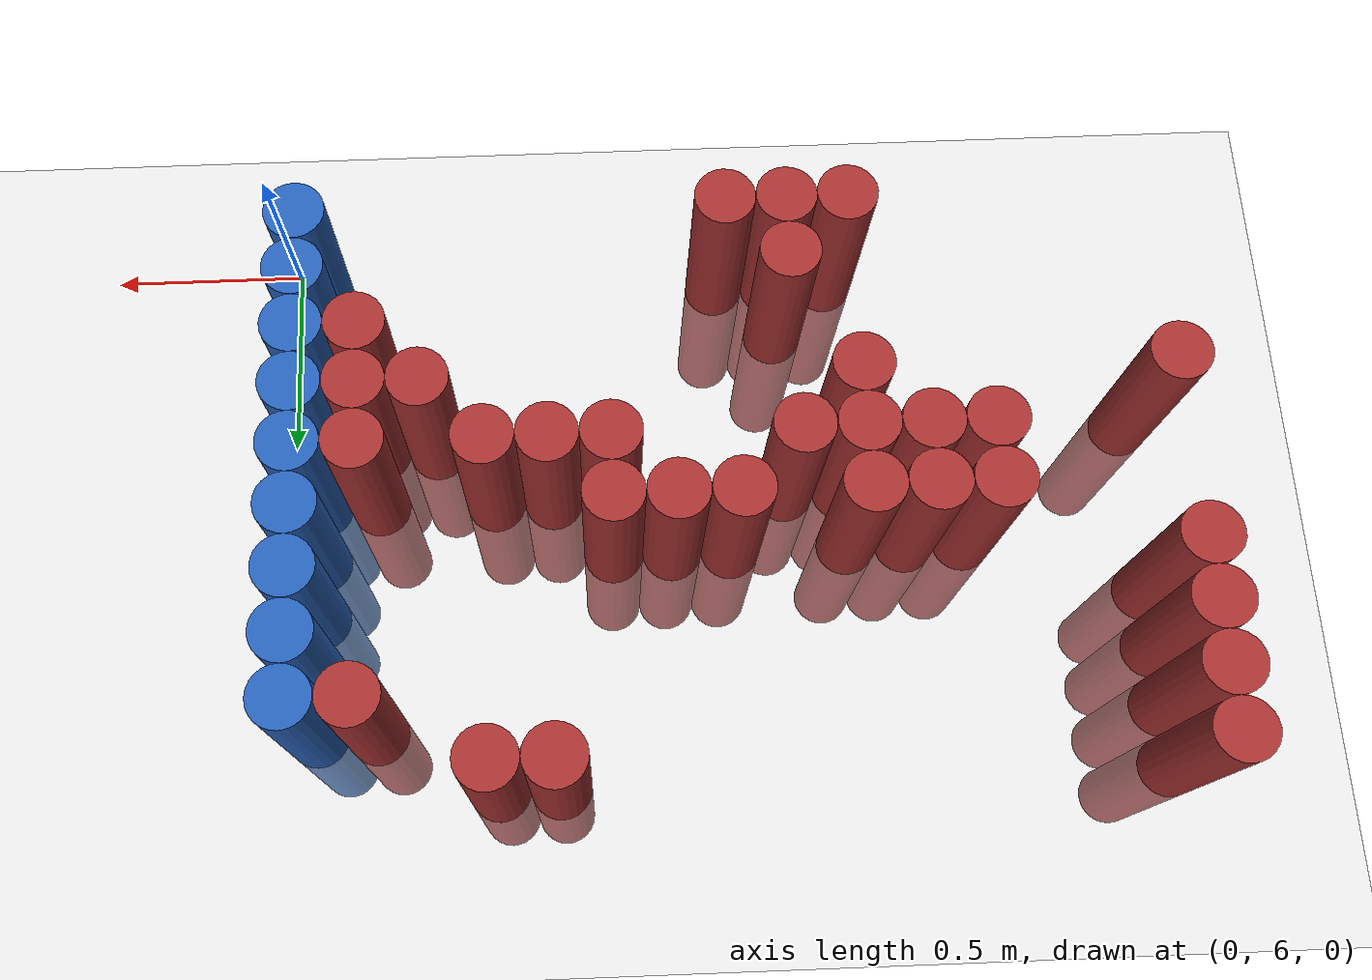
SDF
<sdf version="1.6">
 <world name="default">
  <model name="ground_plane">
   <static>1</static>
   <link name="link">
    <collision name="collision">
     <geometry><plane><normal>0 0 1</normal><size>100 100</size></plane></geometry>
     <surface><friction><ode><mu>100</mu><mu2>50</mu2></ode></friction></surface>
    </collision>
    <visual name="visual">
     <cast_shadows>0</cast_shadows>
     <geometry><plane><normal>0 0 1</normal><size>100 100</size></plane></geometry>
     <material>
      <script><uri>file://media/materials/scripts/gazebo.material</uri><name>Gazebo/Grey</name></script>
     </material>
    </visual>
   </link>
  </model>
  <model name="unit_cylinder_199">
   <static>1</static>
   <pose>-2.175000 6.525000 0.000000 0.000000 0.000000 0.000000</pose>
   <link name="link">
    <inertial>
     <mass>1</mass>
     <inertia><ixx>0.145833</ixx><ixy>0</ixy><ixz>0</ixz><iyy>0.145833</iyy><iyz>0</iyz><izz>0.125</izz></inertia>
    </inertial>
    <collision name="collision">
     <geometry><cylinder><radius>0.075000</radius><length>1</length></cylinder></geometry>
    </collision>
    <visual name="visual">
     <geometry><cylinder><radius>0.075000</radius><length>1</length></cylinder></geometry>
     <material>
      <ambient>0.648000 0.192000 0.192000 1</ambient>
      <diffuse>0.648000 0.192000 0.192000 1</diffuse>
     </material>
     <material>
      <script><name>Gazebo/Grey</name><uri>file://media/materials/scripts/gazebo.material</uri></script>
     </material>
    </visual>
    <sensor name="sensor_contact" type="contact"><contact><collision>collision</collision></contact></sensor>
   </link>
   <plugin filename="gz-sim-touchplugin-system" name="gz::sim::systems::TouchPlugin">
    <target>robot</target>
    <namespace>robot</namespace>
    <time>0.001</time>
    <enabled>true</enabled>
   </plugin>
  </model>
  <model name="unit_cylinder_200">
   <static>1</static>
   <pose>-2.175000 6.975000 0.000000 0.000000 0.000000 0.000000</pose>
   <link name="link">
    <inertial>
     <mass>1</mass>
     <inertia><ixx>0.145833</ixx><ixy>0</ixy><ixz>0</ixz><iyy>0.145833</iyy><iyz>0</iyz><izz>0.125</izz></inertia>
    </inertial>
    <collision name="collision">
     <geometry><cylinder><radius>0.075000</radius><length>1</length></cylinder></geometry>
    </collision>
    <visual name="visual">
     <geometry><cylinder><radius>0.075000</radius><length>1</length></cylinder></geometry>
     <material>
      <ambient>0.648000 0.192000 0.192000 1</ambient>
      <diffuse>0.648000 0.192000 0.192000 1</diffuse>
     </material>
     <material>
      <script><name>Gazebo/Grey</name><uri>file://media/materials/scripts/gazebo.material</uri></script>
     </material>
    </visual>
    <sensor name="sensor_contact" type="contact"><contact><collision>collision</collision></contact></sensor>
   </link>
   <plugin filename="gz-sim-touchplugin-system" name="gz::sim::systems::TouchPlugin">
    <target>robot</target>
    <namespace>robot</namespace>
    <time>0.001</time>
    <enabled>true</enabled>
   </plugin>
  </model>
  <model name="unit_cylinder_201">
   <static>1</static>
   <pose>-2.175000 7.125000 0.000000 0.000000 0.000000 0.000000</pose>
   <link name="link">
    <inertial>
     <mass>1</mass>
     <inertia><ixx>0.145833</ixx><ixy>0</ixy><ixz>0</ixz><iyy>0.145833</iyy><iyz>0</iyz><izz>0.125</izz></inertia>
    </inertial>
    <collision name="collision">
     <geometry><cylinder><radius>0.075000</radius><length>1</length></cylinder></geometry>
    </collision>
    <visual name="visual">
     <geometry><cylinder><radius>0.075000</radius><length>1</length></cylinder></geometry>
     <material>
      <ambient>0.648000 0.192000 0.192000 1</ambient>
      <diffuse>0.648000 0.192000 0.192000 1</diffuse>
     </material>
     <material>
      <script><name>Gazebo/Grey</name><uri>file://media/materials/scripts/gazebo.material</uri></script>
     </material>
    </visual>
    <sensor name="sensor_contact" type="contact"><contact><collision>collision</collision></contact></sensor>
   </link>
   <plugin filename="gz-sim-touchplugin-system" name="gz::sim::systems::TouchPlugin">
    <target>robot</target>
    <namespace>robot</namespace>
    <time>0.001</time>
    <enabled>true</enabled>
   </plugin>
  </model>
  <model name="unit_cylinder_202">
   <static>1</static>
   <pose>-2.175000 7.275000 0.000000 0.000000 0.000000 0.000000</pose>
   <link name="link">
    <inertial>
     <mass>1</mass>
     <inertia><ixx>0.145833</ixx><ixy>0</ixy><ixz>0</ixz><iyy>0.145833</iyy><iyz>0</iyz><izz>0.125</izz></inertia>
    </inertial>
    <collision name="collision">
     <geometry><cylinder><radius>0.075000</radius><length>1</length></cylinder></geometry>
    </collision>
    <visual name="visual">
     <geometry><cylinder><radius>0.075000</radius><length>1</length></cylinder></geometry>
     <material>
      <ambient>0.648000 0.192000 0.192000 1</ambient>
      <diffuse>0.648000 0.192000 0.192000 1</diffuse>
     </material>
     <material>
      <script><name>Gazebo/Grey</name><uri>file://media/materials/scripts/gazebo.material</uri></script>
     </material>
    </visual>
    <sensor name="sensor_contact" type="contact"><contact><collision>collision</collision></contact></sensor>
   </link>
   <plugin filename="gz-sim-touchplugin-system" name="gz::sim::systems::TouchPlugin">
    <target>robot</target>
    <namespace>robot</namespace>
    <time>0.001</time>
    <enabled>true</enabled>
   </plugin>
  </model>
  <model name="unit_cylinder_203">
   <static>1</static>
   <pose>-2.175000 7.425000 0.000000 0.000000 0.000000 0.000000</pose>
   <link name="link">
    <inertial>
     <mass>1</mass>
     <inertia><ixx>0.145833</ixx><ixy>0</ixy><ixz>0</ixz><iyy>0.145833</iyy><iyz>0</iyz><izz>0.125</izz></inertia>
    </inertial>
    <collision name="collision">
     <geometry><cylinder><radius>0.075000</radius><length>1</length></cylinder></geometry>
    </collision>
    <visual name="visual">
     <geometry><cylinder><radius>0.075000</radius><length>1</length></cylinder></geometry>
     <material>
      <ambient>0.648000 0.192000 0.192000 1</ambient>
      <diffuse>0.648000 0.192000 0.192000 1</diffuse>
     </material>
     <material>
      <script><name>Gazebo/Grey</name><uri>file://media/materials/scripts/gazebo.material</uri></script>
     </material>
    </visual>
    <sensor name="sensor_contact" type="contact"><contact><collision>collision</collision></contact></sensor>
   </link>
   <plugin filename="gz-sim-touchplugin-system" name="gz::sim::systems::TouchPlugin">
    <target>robot</target>
    <namespace>robot</namespace>
    <time>0.001</time>
    <enabled>true</enabled>
   </plugin>
  </model>
  <model name="unit_cylinder_231">
   <static>1</static>
   <pose>-1.725000 6.675000 0.000000 0.000000 0.000000 0.000000</pose>
   <link name="link">
    <inertial>
     <mass>1</mass>
     <inertia><ixx>0.145833</ixx><ixy>0</ixy><ixz>0</ixz><iyy>0.145833</iyy><iyz>0</iyz><izz>0.125</izz></inertia>
    </inertial>
    <collision name="collision">
     <geometry><cylinder><radius>0.075000</radius><length>1</length></cylinder></geometry>
    </collision>
    <visual name="visual">
     <geometry><cylinder><radius>0.075000</radius><length>1</length></cylinder></geometry>
     <material>
      <ambient>0.648000 0.192000 0.192000 1</ambient>
      <diffuse>0.648000 0.192000 0.192000 1</diffuse>
     </material>
     <material>
      <script><name>Gazebo/Grey</name><uri>file://media/materials/scripts/gazebo.material</uri></script>
     </material>
    </visual>
    <sensor name="sensor_contact" type="contact"><contact><collision>collision</collision></contact></sensor>
   </link>
   <plugin filename="gz-sim-touchplugin-system" name="gz::sim::systems::TouchPlugin">
    <target>robot</target>
    <namespace>robot</namespace>
    <time>0.001</time>
    <enabled>true</enabled>
   </plugin>
  </model>
  <model name="unit_cylinder_232">
   <static>1</static>
   <pose>-1.725000 6.825000 0.000000 0.000000 0.000000 0.000000</pose>
   <link name="link">
    <inertial>
     <mass>1</mass>
     <inertia><ixx>0.145833</ixx><ixy>0</ixy><ixz>0</ixz><iyy>0.145833</iyy><iyz>0</iyz><izz>0.125</izz></inertia>
    </inertial>
    <collision name="collision">
     <geometry><cylinder><radius>0.075000</radius><length>1</length></cylinder></geometry>
    </collision>
    <visual name="visual">
     <geometry><cylinder><radius>0.075000</radius><length>1</length></cylinder></geometry>
     <material>
      <ambient>0.648000 0.192000 0.192000 1</ambient>
      <diffuse>0.648000 0.192000 0.192000 1</diffuse>
     </material>
     <material>
      <script><name>Gazebo/Grey</name><uri>file://media/materials/scripts/gazebo.material</uri></script>
     </material>
    </visual>
    <sensor name="sensor_contact" type="contact"><contact><collision>collision</collision></contact></sensor>
   </link>
   <plugin filename="gz-sim-touchplugin-system" name="gz::sim::systems::TouchPlugin">
    <target>robot</target>
    <namespace>robot</namespace>
    <time>0.001</time>
    <enabled>true</enabled>
   </plugin>
  </model>
  <model name="unit_cylinder_238">
   <static>1</static>
   <pose>-1.575000 6.675000 0.000000 0.000000 0.000000 0.000000</pose>
   <link name="link">
    <inertial>
     <mass>1</mass>
     <inertia><ixx>0.145833</ixx><ixy>0</ixy><ixz>0</ixz><iyy>0.145833</iyy><iyz>0</iyz><izz>0.125</izz></inertia>
    </inertial>
    <collision name="collision">
     <geometry><cylinder><radius>0.075000</radius><length>1</length></cylinder></geometry>
    </collision>
    <visual name="visual">
     <geometry><cylinder><radius>0.075000</radius><length>1</length></cylinder></geometry>
     <material>
      <ambient>0.648000 0.192000 0.192000 1</ambient>
      <diffuse>0.648000 0.192000 0.192000 1</diffuse>
     </material>
     <material>
      <script><name>Gazebo/Grey</name><uri>file://media/materials/scripts/gazebo.material</uri></script>
     </material>
    </visual>
    <sensor name="sensor_contact" type="contact"><contact><collision>collision</collision></contact></sensor>
   </link>
   <plugin filename="gz-sim-touchplugin-system" name="gz::sim::systems::TouchPlugin">
    <target>robot</target>
    <namespace>robot</namespace>
    <time>0.001</time>
    <enabled>true</enabled>
   </plugin>
  </model>
  <model name="unit_cylinder_239">
   <static>1</static>
   <pose>-1.575000 6.825000 0.000000 0.000000 0.000000 0.000000</pose>
   <link name="link">
    <inertial>
     <mass>1</mass>
     <inertia><ixx>0.145833</ixx><ixy>0</ixy><ixz>0</ixz><iyy>0.145833</iyy><iyz>0</iyz><izz>0.125</izz></inertia>
    </inertial>
    <collision name="collision">
     <geometry><cylinder><radius>0.075000</radius><length>1</length></cylinder></geometry>
    </collision>
    <visual name="visual">
     <geometry><cylinder><radius>0.075000</radius><length>1</length></cylinder></geometry>
     <material>
      <ambient>0.648000 0.192000 0.192000 1</ambient>
      <diffuse>0.648000 0.192000 0.192000 1</diffuse>
     </material>
     <material>
      <script><name>Gazebo/Grey</name><uri>file://media/materials/scripts/gazebo.material</uri></script>
     </material>
    </visual>
    <sensor name="sensor_contact" type="contact"><contact><collision>collision</collision></contact></sensor>
   </link>
   <plugin filename="gz-sim-touchplugin-system" name="gz::sim::systems::TouchPlugin">
    <target>robot</target>
    <namespace>robot</namespace>
    <time>0.001</time>
    <enabled>true</enabled>
   </plugin>
  </model>
  <model name="unit_cylinder_244">
   <static>1</static>
   <pose>-1.425000 6.075000 0.000000 0.000000 0.000000 0.000000</pose>
   <link name="link">
    <inertial>
     <mass>1</mass>
     <inertia><ixx>0.145833</ixx><ixy>0</ixy><ixz>0</ixz><iyy>0.145833</iyy><iyz>0</iyz><izz>0.125</izz></inertia>
    </inertial>
    <collision name="collision">
     <geometry><cylinder><radius>0.075000</radius><length>1</length></cylinder></geometry>
    </collision>
    <visual name="visual">
     <geometry><cylinder><radius>0.075000</radius><length>1</length></cylinder></geometry>
     <material>
      <ambient>0.648000 0.192000 0.192000 1</ambient>
      <diffuse>0.648000 0.192000 0.192000 1</diffuse>
     </material>
     <material>
      <script><name>Gazebo/Grey</name><uri>file://media/materials/scripts/gazebo.material</uri></script>
     </material>
    </visual>
    <sensor name="sensor_contact" type="contact"><contact><collision>collision</collision></contact></sensor>
   </link>
   <plugin filename="gz-sim-touchplugin-system" name="gz::sim::systems::TouchPlugin">
    <target>robot</target>
    <namespace>robot</namespace>
    <time>0.001</time>
    <enabled>true</enabled>
   </plugin>
  </model>
  <model name="unit_cylinder_245">
   <static>1</static>
   <pose>-1.425000 6.525000 0.000000 0.000000 0.000000 0.000000</pose>
   <link name="link">
    <inertial>
     <mass>1</mass>
     <inertia><ixx>0.145833</ixx><ixy>0</ixy><ixz>0</ixz><iyy>0.145833</iyy><iyz>0</iyz><izz>0.125</izz></inertia>
    </inertial>
    <collision name="collision">
     <geometry><cylinder><radius>0.075000</radius><length>1</length></cylinder></geometry>
    </collision>
    <visual name="visual">
     <geometry><cylinder><radius>0.075000</radius><length>1</length></cylinder></geometry>
     <material>
      <ambient>0.648000 0.192000 0.192000 1</ambient>
      <diffuse>0.648000 0.192000 0.192000 1</diffuse>
     </material>
     <material>
      <script><name>Gazebo/Grey</name><uri>file://media/materials/scripts/gazebo.material</uri></script>
     </material>
    </visual>
    <sensor name="sensor_contact" type="contact"><contact><collision>collision</collision></contact></sensor>
   </link>
   <plugin filename="gz-sim-touchplugin-system" name="gz::sim::systems::TouchPlugin">
    <target>robot</target>
    <namespace>robot</namespace>
    <time>0.001</time>
    <enabled>true</enabled>
   </plugin>
  </model>
  <model name="unit_cylinder_246">
   <static>1</static>
   <pose>-1.425000 6.675000 0.000000 0.000000 0.000000 0.000000</pose>
   <link name="link">
    <inertial>
     <mass>1</mass>
     <inertia><ixx>0.145833</ixx><ixy>0</ixy><ixz>0</ixz><iyy>0.145833</iyy><iyz>0</iyz><izz>0.125</izz></inertia>
    </inertial>
    <collision name="collision">
     <geometry><cylinder><radius>0.075000</radius><length>1</length></cylinder></geometry>
    </collision>
    <visual name="visual">
     <geometry><cylinder><radius>0.075000</radius><length>1</length></cylinder></geometry>
     <material>
      <ambient>0.648000 0.192000 0.192000 1</ambient>
      <diffuse>0.648000 0.192000 0.192000 1</diffuse>
     </material>
     <material>
      <script><name>Gazebo/Grey</name><uri>file://media/materials/scripts/gazebo.material</uri></script>
     </material>
    </visual>
    <sensor name="sensor_contact" type="contact"><contact><collision>collision</collision></contact></sensor>
   </link>
   <plugin filename="gz-sim-touchplugin-system" name="gz::sim::systems::TouchPlugin">
    <target>robot</target>
    <namespace>robot</namespace>
    <time>0.001</time>
    <enabled>true</enabled>
   </plugin>
  </model>
  <model name="unit_cylinder_247">
   <static>1</static>
   <pose>-1.425000 6.825000 0.000000 0.000000 0.000000 0.000000</pose>
   <link name="link">
    <inertial>
     <mass>1</mass>
     <inertia><ixx>0.145833</ixx><ixy>0</ixy><ixz>0</ixz><iyy>0.145833</iyy><iyz>0</iyz><izz>0.125</izz></inertia>
    </inertial>
    <collision name="collision">
     <geometry><cylinder><radius>0.075000</radius><length>1</length></cylinder></geometry>
    </collision>
    <visual name="visual">
     <geometry><cylinder><radius>0.075000</radius><length>1</length></cylinder></geometry>
     <material>
      <ambient>0.648000 0.192000 0.192000 1</ambient>
      <diffuse>0.648000 0.192000 0.192000 1</diffuse>
     </material>
     <material>
      <script><name>Gazebo/Grey</name><uri>file://media/materials/scripts/gazebo.material</uri></script>
     </material>
    </visual>
    <sensor name="sensor_contact" type="contact"><contact><collision>collision</collision></contact></sensor>
   </link>
   <plugin filename="gz-sim-touchplugin-system" name="gz::sim::systems::TouchPlugin">
    <target>robot</target>
    <namespace>robot</namespace>
    <time>0.001</time>
    <enabled>true</enabled>
   </plugin>
  </model>
  <model name="unit_cylinder_256">
   <static>1</static>
   <pose>-1.275000 6.075000 0.000000 0.000000 0.000000 0.000000</pose>
   <link name="link">
    <inertial>
     <mass>1</mass>
     <inertia><ixx>0.145833</ixx><ixy>0</ixy><ixz>0</ixz><iyy>0.145833</iyy><iyz>0</iyz><izz>0.125</izz></inertia>
    </inertial>
    <collision name="collision">
     <geometry><cylinder><radius>0.075000</radius><length>1</length></cylinder></geometry>
    </collision>
    <visual name="visual">
     <geometry><cylinder><radius>0.075000</radius><length>1</length></cylinder></geometry>
     <material>
      <ambient>0.648000 0.192000 0.192000 1</ambient>
      <diffuse>0.648000 0.192000 0.192000 1</diffuse>
     </material>
     <material>
      <script><name>Gazebo/Grey</name><uri>file://media/materials/scripts/gazebo.material</uri></script>
     </material>
    </visual>
    <sensor name="sensor_contact" type="contact"><contact><collision>collision</collision></contact></sensor>
   </link>
   <plugin filename="gz-sim-touchplugin-system" name="gz::sim::systems::TouchPlugin">
    <target>robot</target>
    <namespace>robot</namespace>
    <time>0.001</time>
    <enabled>true</enabled>
   </plugin>
  </model>
  <model name="unit_cylinder_257">
   <static>1</static>
   <pose>-1.275000 6.225000 0.000000 0.000000 0.000000 0.000000</pose>
   <link name="link">
    <inertial>
     <mass>1</mass>
     <inertia><ixx>0.145833</ixx><ixy>0</ixy><ixz>0</ixz><iyy>0.145833</iyy><iyz>0</iyz><izz>0.125</izz></inertia>
    </inertial>
    <collision name="collision">
     <geometry><cylinder><radius>0.075000</radius><length>1</length></cylinder></geometry>
    </collision>
    <visual name="visual">
     <geometry><cylinder><radius>0.075000</radius><length>1</length></cylinder></geometry>
     <material>
      <ambient>0.648000 0.192000 0.192000 1</ambient>
      <diffuse>0.648000 0.192000 0.192000 1</diffuse>
     </material>
     <material>
      <script><name>Gazebo/Grey</name><uri>file://media/materials/scripts/gazebo.material</uri></script>
     </material>
    </visual>
    <sensor name="sensor_contact" type="contact"><contact><collision>collision</collision></contact></sensor>
   </link>
   <plugin filename="gz-sim-touchplugin-system" name="gz::sim::systems::TouchPlugin">
    <target>robot</target>
    <namespace>robot</namespace>
    <time>0.001</time>
    <enabled>true</enabled>
   </plugin>
  </model>
  <model name="unit_cylinder_258">
   <static>1</static>
   <pose>-1.275000 6.675000 0.000000 0.000000 0.000000 0.000000</pose>
   <link name="link">
    <inertial>
     <mass>1</mass>
     <inertia><ixx>0.145833</ixx><ixy>0</ixy><ixz>0</ixz><iyy>0.145833</iyy><iyz>0</iyz><izz>0.125</izz></inertia>
    </inertial>
    <collision name="collision">
     <geometry><cylinder><radius>0.075000</radius><length>1</length></cylinder></geometry>
    </collision>
    <visual name="visual">
     <geometry><cylinder><radius>0.075000</radius><length>1</length></cylinder></geometry>
     <material>
      <ambient>0.648000 0.192000 0.192000 1</ambient>
      <diffuse>0.648000 0.192000 0.192000 1</diffuse>
     </material>
     <material>
      <script><name>Gazebo/Grey</name><uri>file://media/materials/scripts/gazebo.material</uri></script>
     </material>
    </visual>
    <sensor name="sensor_contact" type="contact"><contact><collision>collision</collision></contact></sensor>
   </link>
   <plugin filename="gz-sim-touchplugin-system" name="gz::sim::systems::TouchPlugin">
    <target>robot</target>
    <namespace>robot</namespace>
    <time>0.001</time>
    <enabled>true</enabled>
   </plugin>
  </model>
  <model name="unit_cylinder_269">
   <static>1</static>
   <pose>-1.125000 6.075000 0.000000 0.000000 0.000000 0.000000</pose>
   <link name="link">
    <inertial>
     <mass>1</mass>
     <inertia><ixx>0.145833</ixx><ixy>0</ixy><ixz>0</ixz><iyy>0.145833</iyy><iyz>0</iyz><izz>0.125</izz></inertia>
    </inertial>
    <collision name="collision">
     <geometry><cylinder><radius>0.075000</radius><length>1</length></cylinder></geometry>
    </collision>
    <visual name="visual">
     <geometry><cylinder><radius>0.075000</radius><length>1</length></cylinder></geometry>
     <material>
      <ambient>0.648000 0.192000 0.192000 1</ambient>
      <diffuse>0.648000 0.192000 0.192000 1</diffuse>
     </material>
     <material>
      <script><name>Gazebo/Grey</name><uri>file://media/materials/scripts/gazebo.material</uri></script>
     </material>
    </visual>
    <sensor name="sensor_contact" type="contact"><contact><collision>collision</collision></contact></sensor>
   </link>
   <plugin filename="gz-sim-touchplugin-system" name="gz::sim::systems::TouchPlugin">
    <target>robot</target>
    <namespace>robot</namespace>
    <time>0.001</time>
    <enabled>true</enabled>
   </plugin>
  </model>
  <model name="unit_cylinder_270">
   <static>1</static>
   <pose>-1.125000 6.825000 0.000000 0.000000 0.000000 0.000000</pose>
   <link name="link">
    <inertial>
     <mass>1</mass>
     <inertia><ixx>0.145833</ixx><ixy>0</ixy><ixz>0</ixz><iyy>0.145833</iyy><iyz>0</iyz><izz>0.125</izz></inertia>
    </inertial>
    <collision name="collision">
     <geometry><cylinder><radius>0.075000</radius><length>1</length></cylinder></geometry>
    </collision>
    <visual name="visual">
     <geometry><cylinder><radius>0.075000</radius><length>1</length></cylinder></geometry>
     <material>
      <ambient>0.648000 0.192000 0.192000 1</ambient>
      <diffuse>0.648000 0.192000 0.192000 1</diffuse>
     </material>
     <material>
      <script><name>Gazebo/Grey</name><uri>file://media/materials/scripts/gazebo.material</uri></script>
     </material>
    </visual>
    <sensor name="sensor_contact" type="contact"><contact><collision>collision</collision></contact></sensor>
   </link>
   <plugin filename="gz-sim-touchplugin-system" name="gz::sim::systems::TouchPlugin">
    <target>robot</target>
    <namespace>robot</namespace>
    <time>0.001</time>
    <enabled>true</enabled>
   </plugin>
  </model>
  <model name="unit_cylinder_280">
   <static>1</static>
   <pose>-0.975000 6.825000 0.000000 0.000000 0.000000 0.000000</pose>
   <link name="link">
    <inertial>
     <mass>1</mass>
     <inertia><ixx>0.145833</ixx><ixy>0</ixy><ixz>0</ixz><iyy>0.145833</iyy><iyz>0</iyz><izz>0.125</izz></inertia>
    </inertial>
    <collision name="collision">
     <geometry><cylinder><radius>0.075000</radius><length>1</length></cylinder></geometry>
    </collision>
    <visual name="visual">
     <geometry><cylinder><radius>0.075000</radius><length>1</length></cylinder></geometry>
     <material>
      <ambient>0.648000 0.192000 0.192000 1</ambient>
      <diffuse>0.648000 0.192000 0.192000 1</diffuse>
     </material>
     <material>
      <script><name>Gazebo/Grey</name><uri>file://media/materials/scripts/gazebo.material</uri></script>
     </material>
    </visual>
    <sensor name="sensor_contact" type="contact"><contact><collision>collision</collision></contact></sensor>
   </link>
   <plugin filename="gz-sim-touchplugin-system" name="gz::sim::systems::TouchPlugin">
    <target>robot</target>
    <namespace>robot</namespace>
    <time>0.001</time>
    <enabled>true</enabled>
   </plugin>
  </model>
  <model name="unit_cylinder_284">
   <static>1</static>
   <pose>-0.825000 6.675000 0.000000 0.000000 0.000000 0.000000</pose>
   <link name="link">
    <inertial>
     <mass>1</mass>
     <inertia><ixx>0.145833</ixx><ixy>0</ixy><ixz>0</ixz><iyy>0.145833</iyy><iyz>0</iyz><izz>0.125</izz></inertia>
    </inertial>
    <collision name="collision">
     <geometry><cylinder><radius>0.075000</radius><length>1</length></cylinder></geometry>
    </collision>
    <visual name="visual">
     <geometry><cylinder><radius>0.075000</radius><length>1</length></cylinder></geometry>
     <material>
      <ambient>0.648000 0.192000 0.192000 1</ambient>
      <diffuse>0.648000 0.192000 0.192000 1</diffuse>
     </material>
     <material>
      <script><name>Gazebo/Grey</name><uri>file://media/materials/scripts/gazebo.material</uri></script>
     </material>
    </visual>
    <sensor name="sensor_contact" type="contact"><contact><collision>collision</collision></contact></sensor>
   </link>
   <plugin filename="gz-sim-touchplugin-system" name="gz::sim::systems::TouchPlugin">
    <target>robot</target>
    <namespace>robot</namespace>
    <time>0.001</time>
    <enabled>true</enabled>
   </plugin>
  </model>
  <model name="unit_cylinder_285">
   <static>1</static>
   <pose>-0.825000 6.825000 0.000000 0.000000 0.000000 0.000000</pose>
   <link name="link">
    <inertial>
     <mass>1</mass>
     <inertia><ixx>0.145833</ixx><ixy>0</ixy><ixz>0</ixz><iyy>0.145833</iyy><iyz>0</iyz><izz>0.125</izz></inertia>
    </inertial>
    <collision name="collision">
     <geometry><cylinder><radius>0.075000</radius><length>1</length></cylinder></geometry>
    </collision>
    <visual name="visual">
     <geometry><cylinder><radius>0.075000</radius><length>1</length></cylinder></geometry>
     <material>
      <ambient>0.648000 0.192000 0.192000 1</ambient>
      <diffuse>0.648000 0.192000 0.192000 1</diffuse>
     </material>
     <material>
      <script><name>Gazebo/Grey</name><uri>file://media/materials/scripts/gazebo.material</uri></script>
     </material>
    </visual>
    <sensor name="sensor_contact" type="contact"><contact><collision>collision</collision></contact></sensor>
   </link>
   <plugin filename="gz-sim-touchplugin-system" name="gz::sim::systems::TouchPlugin">
    <target>robot</target>
    <namespace>robot</namespace>
    <time>0.001</time>
    <enabled>true</enabled>
   </plugin>
  </model>
  <model name="unit_cylinder_290">
   <static>1</static>
   <pose>-0.675000 6.675000 0.000000 0.000000 0.000000 0.000000</pose>
   <link name="link">
    <inertial>
     <mass>1</mass>
     <inertia><ixx>0.145833</ixx><ixy>0</ixy><ixz>0</ixz><iyy>0.145833</iyy><iyz>0</iyz><izz>0.125</izz></inertia>
    </inertial>
    <collision name="collision">
     <geometry><cylinder><radius>0.075000</radius><length>1</length></cylinder></geometry>
    </collision>
    <visual name="visual">
     <geometry><cylinder><radius>0.075000</radius><length>1</length></cylinder></geometry>
     <material>
      <ambient>0.648000 0.192000 0.192000 1</ambient>
      <diffuse>0.648000 0.192000 0.192000 1</diffuse>
     </material>
     <material>
      <script><name>Gazebo/Grey</name><uri>file://media/materials/scripts/gazebo.material</uri></script>
     </material>
    </visual>
    <sensor name="sensor_contact" type="contact"><contact><collision>collision</collision></contact></sensor>
   </link>
   <plugin filename="gz-sim-touchplugin-system" name="gz::sim::systems::TouchPlugin">
    <target>robot</target>
    <namespace>robot</namespace>
    <time>0.001</time>
    <enabled>true</enabled>
   </plugin>
  </model>
  <model name="unit_cylinder_291">
   <static>1</static>
   <pose>-0.675000 7.425000 0.000000 0.000000 0.000000 0.000000</pose>
   <link name="link">
    <inertial>
     <mass>1</mass>
     <inertia><ixx>0.145833</ixx><ixy>0</ixy><ixz>0</ixz><iyy>0.145833</iyy><iyz>0</iyz><izz>0.125</izz></inertia>
    </inertial>
    <collision name="collision">
     <geometry><cylinder><radius>0.075000</radius><length>1</length></cylinder></geometry>
    </collision>
    <visual name="visual">
     <geometry><cylinder><radius>0.075000</radius><length>1</length></cylinder></geometry>
     <material>
      <ambient>0.648000 0.192000 0.192000 1</ambient>
      <diffuse>0.648000 0.192000 0.192000 1</diffuse>
     </material>
     <material>
      <script><name>Gazebo/Grey</name><uri>file://media/materials/scripts/gazebo.material</uri></script>
     </material>
    </visual>
    <sensor name="sensor_contact" type="contact"><contact><collision>collision</collision></contact></sensor>
   </link>
   <plugin filename="gz-sim-touchplugin-system" name="gz::sim::systems::TouchPlugin">
    <target>robot</target>
    <namespace>robot</namespace>
    <time>0.001</time>
    <enabled>true</enabled>
   </plugin>
  </model>
  <model name="unit_cylinder_296">
   <static>1</static>
   <pose>-0.525000 6.675000 0.000000 0.000000 0.000000 0.000000</pose>
   <link name="link">
    <inertial>
     <mass>1</mass>
     <inertia><ixx>0.145833</ixx><ixy>0</ixy><ixz>0</ixz><iyy>0.145833</iyy><iyz>0</iyz><izz>0.125</izz></inertia>
    </inertial>
    <collision name="collision">
     <geometry><cylinder><radius>0.075000</radius><length>1</length></cylinder></geometry>
    </collision>
    <visual name="visual">
     <geometry><cylinder><radius>0.075000</radius><length>1</length></cylinder></geometry>
     <material>
      <ambient>0.648000 0.192000 0.192000 1</ambient>
      <diffuse>0.648000 0.192000 0.192000 1</diffuse>
     </material>
     <material>
      <script><name>Gazebo/Grey</name><uri>file://media/materials/scripts/gazebo.material</uri></script>
     </material>
    </visual>
    <sensor name="sensor_contact" type="contact"><contact><collision>collision</collision></contact></sensor>
   </link>
   <plugin filename="gz-sim-touchplugin-system" name="gz::sim::systems::TouchPlugin">
    <target>robot</target>
    <namespace>robot</namespace>
    <time>0.001</time>
    <enabled>true</enabled>
   </plugin>
  </model>
  <model name="unit_cylinder_297">
   <static>1</static>
   <pose>-0.525000 7.425000 0.000000 0.000000 0.000000 0.000000</pose>
   <link name="link">
    <inertial>
     <mass>1</mass>
     <inertia><ixx>0.145833</ixx><ixy>0</ixy><ixz>0</ixz><iyy>0.145833</iyy><iyz>0</iyz><izz>0.125</izz></inertia>
    </inertial>
    <collision name="collision">
     <geometry><cylinder><radius>0.075000</radius><length>1</length></cylinder></geometry>
    </collision>
    <visual name="visual">
     <geometry><cylinder><radius>0.075000</radius><length>1</length></cylinder></geometry>
     <material>
      <ambient>0.648000 0.192000 0.192000 1</ambient>
      <diffuse>0.648000 0.192000 0.192000 1</diffuse>
     </material>
     <material>
      <script><name>Gazebo/Grey</name><uri>file://media/materials/scripts/gazebo.material</uri></script>
     </material>
    </visual>
    <sensor name="sensor_contact" type="contact"><contact><collision>collision</collision></contact></sensor>
   </link>
   <plugin filename="gz-sim-touchplugin-system" name="gz::sim::systems::TouchPlugin">
    <target>robot</target>
    <namespace>robot</namespace>
    <time>0.001</time>
    <enabled>true</enabled>
   </plugin>
  </model>
  <model name="unit_cylinder_303">
   <static>1</static>
   <pose>-0.375000 6.525000 0.000000 0.000000 0.000000 0.000000</pose>
   <link name="link">
    <inertial>
     <mass>1</mass>
     <inertia><ixx>0.145833</ixx><ixy>0</ixy><ixz>0</ixz><iyy>0.145833</iyy><iyz>0</iyz><izz>0.125</izz></inertia>
    </inertial>
    <collision name="collision">
     <geometry><cylinder><radius>0.075000</radius><length>1</length></cylinder></geometry>
    </collision>
    <visual name="visual">
     <geometry><cylinder><radius>0.075000</radius><length>1</length></cylinder></geometry>
     <material>
      <ambient>0.648000 0.192000 0.192000 1</ambient>
      <diffuse>0.648000 0.192000 0.192000 1</diffuse>
     </material>
     <material>
      <script><name>Gazebo/Grey</name><uri>file://media/materials/scripts/gazebo.material</uri></script>
     </material>
    </visual>
    <sensor name="sensor_contact" type="contact"><contact><collision>collision</collision></contact></sensor>
   </link>
   <plugin filename="gz-sim-touchplugin-system" name="gz::sim::systems::TouchPlugin">
    <target>robot</target>
    <namespace>robot</namespace>
    <time>0.001</time>
    <enabled>true</enabled>
   </plugin>
  </model>
  <model name="unit_cylinder_312">
   <static>1</static>
   <pose>-0.225000 6.375000 0.000000 0.000000 0.000000 0.000000</pose>
   <link name="link">
    <inertial>
     <mass>1</mass>
     <inertia><ixx>0.145833</ixx><ixy>0</ixy><ixz>0</ixz><iyy>0.145833</iyy><iyz>0</iyz><izz>0.125</izz></inertia>
    </inertial>
    <collision name="collision">
     <geometry><cylinder><radius>0.075000</radius><length>1</length></cylinder></geometry>
    </collision>
    <visual name="visual">
     <geometry><cylinder><radius>0.075000</radius><length>1</length></cylinder></geometry>
     <material>
      <ambient>0.648000 0.192000 0.192000 1</ambient>
      <diffuse>0.648000 0.192000 0.192000 1</diffuse>
     </material>
     <material>
      <script><name>Gazebo/Grey</name><uri>file://media/materials/scripts/gazebo.material</uri></script>
     </material>
    </visual>
    <sensor name="sensor_contact" type="contact"><contact><collision>collision</collision></contact></sensor>
   </link>
   <plugin filename="gz-sim-touchplugin-system" name="gz::sim::systems::TouchPlugin">
    <target>robot</target>
    <namespace>robot</namespace>
    <time>0.001</time>
    <enabled>true</enabled>
   </plugin>
  </model>
  <model name="unit_cylinder_313">
   <static>1</static>
   <pose>-0.225000 6.525000 0.000000 0.000000 0.000000 0.000000</pose>
   <link name="link">
    <inertial>
     <mass>1</mass>
     <inertia><ixx>0.145833</ixx><ixy>0</ixy><ixz>0</ixz><iyy>0.145833</iyy><iyz>0</iyz><izz>0.125</izz></inertia>
    </inertial>
    <collision name="collision">
     <geometry><cylinder><radius>0.075000</radius><length>1</length></cylinder></geometry>
    </collision>
    <visual name="visual">
     <geometry><cylinder><radius>0.075000</radius><length>1</length></cylinder></geometry>
     <material>
      <ambient>0.648000 0.192000 0.192000 1</ambient>
      <diffuse>0.648000 0.192000 0.192000 1</diffuse>
     </material>
     <material>
      <script><name>Gazebo/Grey</name><uri>file://media/materials/scripts/gazebo.material</uri></script>
     </material>
    </visual>
    <sensor name="sensor_contact" type="contact"><contact><collision>collision</collision></contact></sensor>
   </link>
   <plugin filename="gz-sim-touchplugin-system" name="gz::sim::systems::TouchPlugin">
    <target>robot</target>
    <namespace>robot</namespace>
    <time>0.001</time>
    <enabled>true</enabled>
   </plugin>
  </model>
  <model name="unit_cylinder_314">
   <static>1</static>
   <pose>-0.225000 6.675000 0.000000 0.000000 0.000000 0.000000</pose>
   <link name="link">
    <inertial>
     <mass>1</mass>
     <inertia><ixx>0.145833</ixx><ixy>0</ixy><ixz>0</ixz><iyy>0.145833</iyy><iyz>0</iyz><izz>0.125</izz></inertia>
    </inertial>
    <collision name="collision">
     <geometry><cylinder><radius>0.075000</radius><length>1</length></cylinder></geometry>
    </collision>
    <visual name="visual">
     <geometry><cylinder><radius>0.075000</radius><length>1</length></cylinder></geometry>
     <material>
      <ambient>0.648000 0.192000 0.192000 1</ambient>
      <diffuse>0.648000 0.192000 0.192000 1</diffuse>
     </material>
     <material>
      <script><name>Gazebo/Grey</name><uri>file://media/materials/scripts/gazebo.material</uri></script>
     </material>
    </visual>
    <sensor name="sensor_contact" type="contact"><contact><collision>collision</collision></contact></sensor>
   </link>
   <plugin filename="gz-sim-touchplugin-system" name="gz::sim::systems::TouchPlugin">
    <target>robot</target>
    <namespace>robot</namespace>
    <time>0.001</time>
    <enabled>true</enabled>
   </plugin>
  </model>
  <model name="unit_cylinder_315">
   <static>1</static>
   <pose>-0.225000 7.275000 0.000000 0.000000 0.000000 0.000000</pose>
   <link name="link">
    <inertial>
     <mass>1</mass>
     <inertia><ixx>0.145833</ixx><ixy>0</ixy><ixz>0</ixz><iyy>0.145833</iyy><iyz>0</iyz><izz>0.125</izz></inertia>
    </inertial>
    <collision name="collision">
     <geometry><cylinder><radius>0.075000</radius><length>1</length></cylinder></geometry>
    </collision>
    <visual name="visual">
     <geometry><cylinder><radius>0.075000</radius><length>1</length></cylinder></geometry>
     <material>
      <ambient>0.648000 0.192000 0.192000 1</ambient>
      <diffuse>0.648000 0.192000 0.192000 1</diffuse>
     </material>
     <material>
      <script><name>Gazebo/Grey</name><uri>file://media/materials/scripts/gazebo.material</uri></script>
     </material>
    </visual>
    <sensor name="sensor_contact" type="contact"><contact><collision>collision</collision></contact></sensor>
   </link>
   <plugin filename="gz-sim-touchplugin-system" name="gz::sim::systems::TouchPlugin">
    <target>robot</target>
    <namespace>robot</namespace>
    <time>0.001</time>
    <enabled>true</enabled>
   </plugin>
  </model>
  <model name="unit_cylinder_330">
   <static>1</static>
   <pose>-0.075000 6.075000 0.000000 0.000000 0.000000 0.000000</pose>
   <link name="link">
    <inertial>
     <mass>1</mass>
     <inertia><ixx>0.145833</ixx><ixy>0</ixy><ixz>0</ixz><iyy>0.145833</iyy><iyz>0</iyz><izz>0.125</izz></inertia>
    </inertial>
    <collision name="collision">
     <geometry><cylinder><radius>0.075000</radius><length>1</length></cylinder></geometry>
    </collision>
    <visual name="visual">
     <geometry><cylinder><radius>0.075000</radius><length>1</length></cylinder></geometry>
     <material>
      <ambient>0.152000 0.379000 0.720000 1</ambient>
      <diffuse>0.152000 0.379000 0.720000 1</diffuse>
     </material>
     <material>
      <script><name>Gazebo/Grey</name><uri>file://media/materials/scripts/gazebo.material</uri></script>
     </material>
    </visual>
    <sensor name="sensor_contact" type="contact"><contact><collision>collision</collision></contact></sensor>
   </link>
   <plugin filename="gz-sim-touchplugin-system" name="gz::sim::systems::TouchPlugin">
    <target>robot</target>
    <namespace>robot</namespace>
    <time>0.001</time>
    <enabled>true</enabled>
   </plugin>
  </model>
  <model name="unit_cylinder_331">
   <static>1</static>
   <pose>-0.075000 6.225000 0.000000 0.000000 0.000000 0.000000</pose>
   <link name="link">
    <inertial>
     <mass>1</mass>
     <inertia><ixx>0.145833</ixx><ixy>0</ixy><ixz>0</ixz><iyy>0.145833</iyy><iyz>0</iyz><izz>0.125</izz></inertia>
    </inertial>
    <collision name="collision">
     <geometry><cylinder><radius>0.075000</radius><length>1</length></cylinder></geometry>
    </collision>
    <visual name="visual">
     <geometry><cylinder><radius>0.075000</radius><length>1</length></cylinder></geometry>
     <material>
      <ambient>0.152000 0.379000 0.720000 1</ambient>
      <diffuse>0.152000 0.379000 0.720000 1</diffuse>
     </material>
     <material>
      <script><name>Gazebo/Grey</name><uri>file://media/materials/scripts/gazebo.material</uri></script>
     </material>
    </visual>
    <sensor name="sensor_contact" type="contact"><contact><collision>collision</collision></contact></sensor>
   </link>
   <plugin filename="gz-sim-touchplugin-system" name="gz::sim::systems::TouchPlugin">
    <target>robot</target>
    <namespace>robot</namespace>
    <time>0.001</time>
    <enabled>true</enabled>
   </plugin>
  </model>
  <model name="unit_cylinder_332">
   <static>1</static>
   <pose>-0.075000 6.375000 0.000000 0.000000 0.000000 0.000000</pose>
   <link name="link">
    <inertial>
     <mass>1</mass>
     <inertia><ixx>0.145833</ixx><ixy>0</ixy><ixz>0</ixz><iyy>0.145833</iyy><iyz>0</iyz><izz>0.125</izz></inertia>
    </inertial>
    <collision name="collision">
     <geometry><cylinder><radius>0.075000</radius><length>1</length></cylinder></geometry>
    </collision>
    <visual name="visual">
     <geometry><cylinder><radius>0.075000</radius><length>1</length></cylinder></geometry>
     <material>
      <ambient>0.152000 0.379000 0.720000 1</ambient>
      <diffuse>0.152000 0.379000 0.720000 1</diffuse>
     </material>
     <material>
      <script><name>Gazebo/Grey</name><uri>file://media/materials/scripts/gazebo.material</uri></script>
     </material>
    </visual>
    <sensor name="sensor_contact" type="contact"><contact><collision>collision</collision></contact></sensor>
   </link>
   <plugin filename="gz-sim-touchplugin-system" name="gz::sim::systems::TouchPlugin">
    <target>robot</target>
    <namespace>robot</namespace>
    <time>0.001</time>
    <enabled>true</enabled>
   </plugin>
  </model>
  <model name="unit_cylinder_333">
   <static>1</static>
   <pose>-0.075000 6.525000 0.000000 0.000000 0.000000 0.000000</pose>
   <link name="link">
    <inertial>
     <mass>1</mass>
     <inertia><ixx>0.145833</ixx><ixy>0</ixy><ixz>0</ixz><iyy>0.145833</iyy><iyz>0</iyz><izz>0.125</izz></inertia>
    </inertial>
    <collision name="collision">
     <geometry><cylinder><radius>0.075000</radius><length>1</length></cylinder></geometry>
    </collision>
    <visual name="visual">
     <geometry><cylinder><radius>0.075000</radius><length>1</length></cylinder></geometry>
     <material>
      <ambient>0.152000 0.379000 0.720000 1</ambient>
      <diffuse>0.152000 0.379000 0.720000 1</diffuse>
     </material>
     <material>
      <script><name>Gazebo/Grey</name><uri>file://media/materials/scripts/gazebo.material</uri></script>
     </material>
    </visual>
    <sensor name="sensor_contact" type="contact"><contact><collision>collision</collision></contact></sensor>
   </link>
   <plugin filename="gz-sim-touchplugin-system" name="gz::sim::systems::TouchPlugin">
    <target>robot</target>
    <namespace>robot</namespace>
    <time>0.001</time>
    <enabled>true</enabled>
   </plugin>
  </model>
  <model name="unit_cylinder_334">
   <static>1</static>
   <pose>-0.075000 6.675000 0.000000 0.000000 0.000000 0.000000</pose>
   <link name="link">
    <inertial>
     <mass>1</mass>
     <inertia><ixx>0.145833</ixx><ixy>0</ixy><ixz>0</ixz><iyy>0.145833</iyy><iyz>0</iyz><izz>0.125</izz></inertia>
    </inertial>
    <collision name="collision">
     <geometry><cylinder><radius>0.075000</radius><length>1</length></cylinder></geometry>
    </collision>
    <visual name="visual">
     <geometry><cylinder><radius>0.075000</radius><length>1</length></cylinder></geometry>
     <material>
      <ambient>0.152000 0.379000 0.720000 1</ambient>
      <diffuse>0.152000 0.379000 0.720000 1</diffuse>
     </material>
     <material>
      <script><name>Gazebo/Grey</name><uri>file://media/materials/scripts/gazebo.material</uri></script>
     </material>
    </visual>
    <sensor name="sensor_contact" type="contact"><contact><collision>collision</collision></contact></sensor>
   </link>
   <plugin filename="gz-sim-touchplugin-system" name="gz::sim::systems::TouchPlugin">
    <target>robot</target>
    <namespace>robot</namespace>
    <time>0.001</time>
    <enabled>true</enabled>
   </plugin>
  </model>
  <model name="unit_cylinder_335">
   <static>1</static>
   <pose>-0.075000 6.825000 0.000000 0.000000 0.000000 0.000000</pose>
   <link name="link">
    <inertial>
     <mass>1</mass>
     <inertia><ixx>0.145833</ixx><ixy>0</ixy><ixz>0</ixz><iyy>0.145833</iyy><iyz>0</iyz><izz>0.125</izz></inertia>
    </inertial>
    <collision name="collision">
     <geometry><cylinder><radius>0.075000</radius><length>1</length></cylinder></geometry>
    </collision>
    <visual name="visual">
     <geometry><cylinder><radius>0.075000</radius><length>1</length></cylinder></geometry>
     <material>
      <ambient>0.152000 0.379000 0.720000 1</ambient>
      <diffuse>0.152000 0.379000 0.720000 1</diffuse>
     </material>
     <material>
      <script><name>Gazebo/Grey</name><uri>file://media/materials/scripts/gazebo.material</uri></script>
     </material>
    </visual>
    <sensor name="sensor_contact" type="contact"><contact><collision>collision</collision></contact></sensor>
   </link>
   <plugin filename="gz-sim-touchplugin-system" name="gz::sim::systems::TouchPlugin">
    <target>robot</target>
    <namespace>robot</namespace>
    <time>0.001</time>
    <enabled>true</enabled>
   </plugin>
  </model>
  <model name="unit_cylinder_336">
   <static>1</static>
   <pose>-0.075000 6.975000 0.000000 0.000000 0.000000 0.000000</pose>
   <link name="link">
    <inertial>
     <mass>1</mass>
     <inertia><ixx>0.145833</ixx><ixy>0</ixy><ixz>0</ixz><iyy>0.145833</iyy><iyz>0</iyz><izz>0.125</izz></inertia>
    </inertial>
    <collision name="collision">
     <geometry><cylinder><radius>0.075000</radius><length>1</length></cylinder></geometry>
    </collision>
    <visual name="visual">
     <geometry><cylinder><radius>0.075000</radius><length>1</length></cylinder></geometry>
     <material>
      <ambient>0.152000 0.379000 0.720000 1</ambient>
      <diffuse>0.152000 0.379000 0.720000 1</diffuse>
     </material>
     <material>
      <script><name>Gazebo/Grey</name><uri>file://media/materials/scripts/gazebo.material</uri></script>
     </material>
    </visual>
    <sensor name="sensor_contact" type="contact"><contact><collision>collision</collision></contact></sensor>
   </link>
   <plugin filename="gz-sim-touchplugin-system" name="gz::sim::systems::TouchPlugin">
    <target>robot</target>
    <namespace>robot</namespace>
    <time>0.001</time>
    <enabled>true</enabled>
   </plugin>
  </model>
  <model name="unit_cylinder_337">
   <static>1</static>
   <pose>-0.075000 7.125000 0.000000 0.000000 0.000000 0.000000</pose>
   <link name="link">
    <inertial>
     <mass>1</mass>
     <inertia><ixx>0.145833</ixx><ixy>0</ixy><ixz>0</ixz><iyy>0.145833</iyy><iyz>0</iyz><izz>0.125</izz></inertia>
    </inertial>
    <collision name="collision">
     <geometry><cylinder><radius>0.075000</radius><length>1</length></cylinder></geometry>
    </collision>
    <visual name="visual">
     <geometry><cylinder><radius>0.075000</radius><length>1</length></cylinder></geometry>
     <material>
      <ambient>0.152000 0.379000 0.720000 1</ambient>
      <diffuse>0.152000 0.379000 0.720000 1</diffuse>
     </material>
     <material>
      <script><name>Gazebo/Grey</name><uri>file://media/materials/scripts/gazebo.material</uri></script>
     </material>
    </visual>
    <sensor name="sensor_contact" type="contact"><contact><collision>collision</collision></contact></sensor>
   </link>
   <plugin filename="gz-sim-touchplugin-system" name="gz::sim::systems::TouchPlugin">
    <target>robot</target>
    <namespace>robot</namespace>
    <time>0.001</time>
    <enabled>true</enabled>
   </plugin>
  </model>
  <model name="unit_cylinder_338">
   <static>1</static>
   <pose>-0.075000 7.275000 0.000000 0.000000 0.000000 0.000000</pose>
   <link name="link">
    <inertial>
     <mass>1</mass>
     <inertia><ixx>0.145833</ixx><ixy>0</ixy><ixz>0</ixz><iyy>0.145833</iyy><iyz>0</iyz><izz>0.125</izz></inertia>
    </inertial>
    <collision name="collision">
     <geometry><cylinder><radius>0.075000</radius><length>1</length></cylinder></geometry>
    </collision>
    <visual name="visual">
     <geometry><cylinder><radius>0.075000</radius><length>1</length></cylinder></geometry>
     <material>
      <ambient>0.152000 0.379000 0.720000 1</ambient>
      <diffuse>0.152000 0.379000 0.720000 1</diffuse>
     </material>
     <material>
      <script><name>Gazebo/Grey</name><uri>file://media/materials/scripts/gazebo.material</uri></script>
     </material>
    </visual>
    <sensor name="sensor_contact" type="contact"><contact><collision>collision</collision></contact></sensor>
   </link>
   <plugin filename="gz-sim-touchplugin-system" name="gz::sim::systems::TouchPlugin">
    <target>robot</target>
    <namespace>robot</namespace>
    <time>0.001</time>
    <enabled>true</enabled>
   </plugin>
  </model>
 </world>
</sdf>
